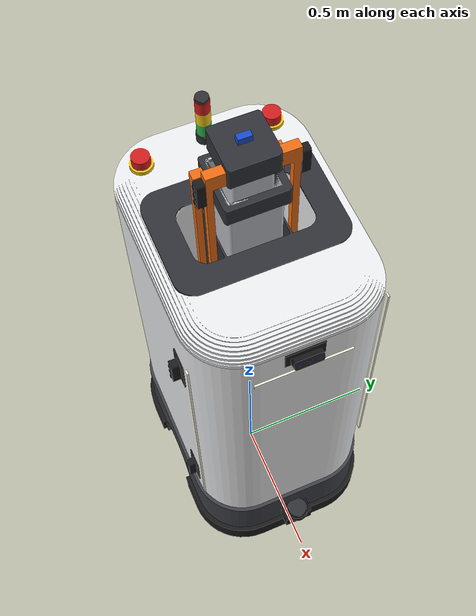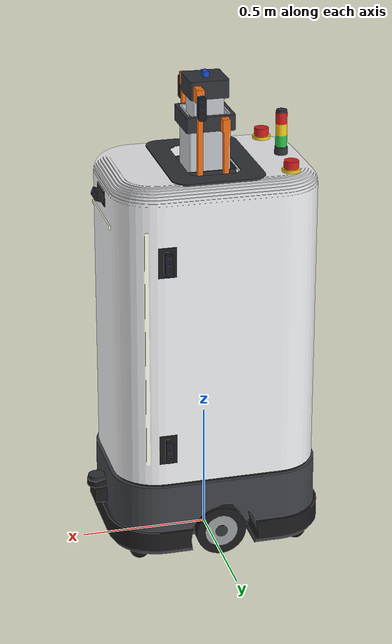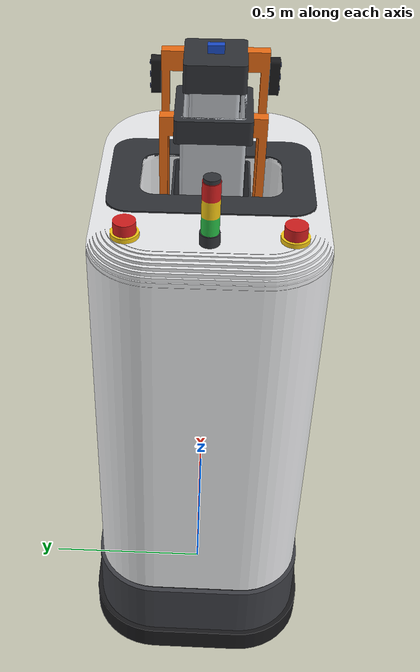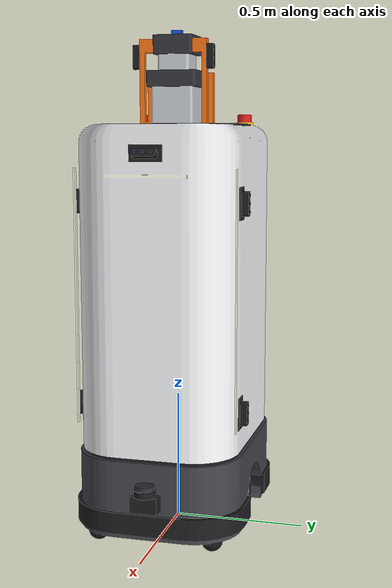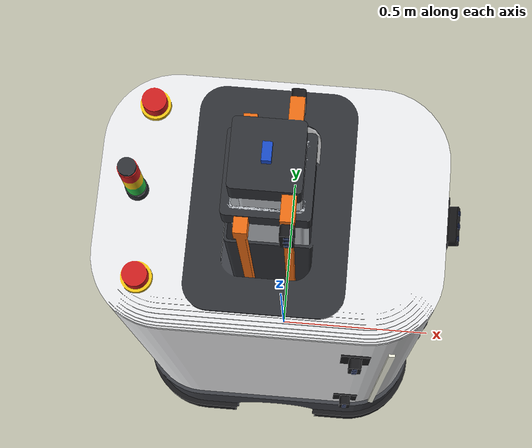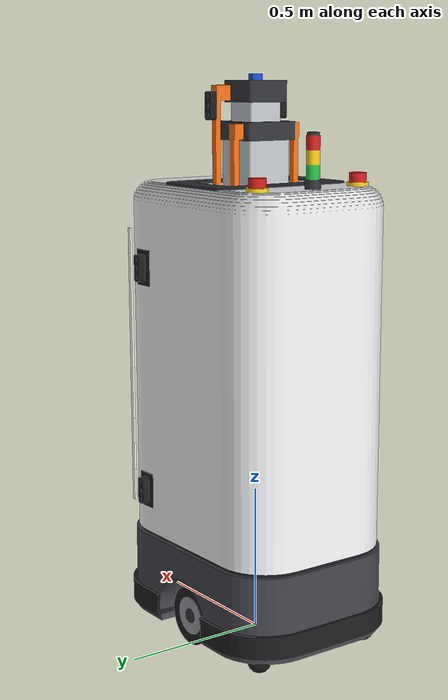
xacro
<?xml version="1.0"?>
<robot name="robot_inventaire" xmlns:xacro="http://www.ros.org/wiki/xacro">

  <!-- dimensions en metres, issues du dossier de conception -->
  <xacro:property name="corps_l" value="0.8"/>
  <xacro:property name="corps_w" value="0.6"/>
  <xacro:property name="corps_h" value="1.5"/>
  <xacro:property name="garde_sol" value="0.05"/>
  <xacro:property name="roue_r" value="0.1"/>
  <xacro:property name="roue_e" value="0.05"/>
  <xacro:property name="voie" value="0.5"/>
  <xacro:property name="folle_r" value="0.04"/>

  <!-- maillages 3d generes par outils/generer_maillages.py -->
  <xacro:property name="maillages" value="file://$(find robot_inventaire_description)/meshes"/>

  <!-- inerties des formes simples -->
  <xacro:macro name="inertie_boite" params="m x y z">
    <inertial>
      <mass value="${m}"/>
      <inertia ixx="${m*(y*y+z*z)/12}" ixy="0" ixz="0"
               iyy="${m*(x*x+z*z)/12}" iyz="0" izz="${m*(x*x+y*y)/12}"/>
    </inertial>
  </xacro:macro>

  <xacro:macro name="inertie_cylindre" params="m r h">
    <inertial>
      <mass value="${m}"/>
      <inertia ixx="${m*(3*r*r+h*h)/12}" ixy="0" ixz="0"
               iyy="${m*(3*r*r+h*h)/12}" iyz="0" izz="${m*r*r/2}"/>
    </inertial>
  </xacro:macro>

  <material name="noir"><color rgba="0.1 0.1 0.1 1"/></material>
  <material name="bleu"><color rgba="0.1 0.3 0.8 1"/></material>

  <!-- projection au sol, reference de la navigation -->
  <link name="base_footprint"/>

  <!-- corps : coque, socle, fourreau fixe du mat ; base_link est au bas du socle -->
  <link name="base_link">
    <visual>
      <geometry><mesh filename="${maillages}/corps.dae"/></geometry>
    </visual>
    <collision>
      <origin xyz="0 0 ${corps_h/2}"/>
      <geometry><box size="${corps_l} ${corps_w} ${corps_h}"/></geometry>
    </collision>
    <!-- batterie et lest en bas : centre de gravite bas -->
    <inertial>
      <origin xyz="0 0 0.3"/>
      <mass value="120"/>
      <inertia ixx="25" ixy="0" ixz="0" iyy="28" iyz="0" izz="10"/>
    </inertial>
  </link>

  <joint name="base_joint" type="fixed">
    <parent link="base_footprint"/>
    <child link="base_link"/>
    <origin xyz="0 0 ${garde_sol}"/>
  </joint>

  <!-- roues motrices -->
  <xacro:macro name="roue" params="nom y">
    <link name="roue_${nom}">
      <visual>
        <geometry><mesh filename="${maillages}/roue.dae"/></geometry>
      </visual>
      <collision>
        <origin rpy="${pi/2} 0 0"/>
        <geometry><cylinder radius="${roue_r}" length="${roue_e}"/></geometry>
      </collision>
      <xacro:inertie_cylindre m="3" r="${roue_r}" h="${roue_e}"/>
    </link>
    <joint name="roue_${nom}_joint" type="continuous">
      <parent link="base_link"/>
      <child link="roue_${nom}"/>
      <origin xyz="0 ${y} ${roue_r - garde_sol}"/>
      <axis xyz="0 1 0"/>
    </joint>
  </xacro:macro>

  <xacro:roue nom="gauche" y="${voie/2}"/>
  <xacro:roue nom="droite" y="${-voie/2}"/>

  <!-- roues folles aux quatre coins, cachees sous le socle -->
  <xacro:macro name="folle" params="nom x y">
    <link name="folle_${nom}">
      <visual>
        <geometry><sphere radius="${folle_r}"/></geometry>
        <material name="noir"/>
      </visual>
      <collision>
        <geometry><sphere radius="${folle_r}"/></geometry>
      </collision>
      <xacro:inertie_boite m="0.2" x="0.08" y="0.08" z="0.08"/>
    </link>
    <joint name="folle_${nom}_joint" type="fixed">
      <parent link="base_link"/>
      <child link="folle_${nom}"/>
      <origin xyz="${x} ${y} ${folle_r - garde_sol}"/>
    </joint>
  </xacro:macro>

  <xacro:folle nom="av_g" x="0.32" y="0.22"/>
  <xacro:folle nom="av_d" x="0.32" y="-0.22"/>
  <xacro:folle nom="ar_g" x="-0.32" y="0.22"/>
  <xacro:folle nom="ar_d" x="-0.32" y="-0.22"/>

  <xacro:macro name="segment" params="nom parent cote longueur origine_z course_max">
    <link name="${nom}">
      <visual>
        <geometry><mesh filename="${maillages}/${nom}.dae"/></geometry>
      </visual>
      <collision>
        <origin xyz="0 0 ${longueur/2}"/>
        <geometry><box size="${cote} ${cote} ${longueur}"/></geometry>
      </collision>
      <xacro:inertie_boite m="5" x="${cote}" y="${cote}" z="${longueur}"/>
    </link>
    <joint name="${nom}_joint" type="prismatic">
      <parent link="${parent}"/>
      <child link="${nom}"/>
      <origin xyz="0 0 ${origine_z}"/>
      <axis xyz="0 0 1"/>
      <limit lower="0" upper="${course_max}" effort="500" velocity="0.2"/>
    </joint>
  </xacro:macro>

  <xacro:segment nom="mat_1" parent="base_link" cote="0.16" longueur="1.55"
                 origine_z="0.15" course_max="1.10"/>
  <xacro:segment nom="mat_2" parent="mat_1" cote="0.12" longueur="1.47"
                 origine_z="0.20" course_max="1.10"/>

  <!-- ===== capteurs ===== -->

  <!-- camera gemini 335 : boitier + repere optique -->
  <xacro:macro name="camera" params="nom parent x y z yaw pitch:=0 roll:=0">
    <link name="${nom}">
      <visual>
        <geometry><mesh filename="${maillages}/camera.dae"/></geometry>
      </visual>
      <collision>
        <geometry><box size="0.025 0.09 0.03"/></geometry>
      </collision>
      <xacro:inertie_boite m="0.1" x="0.025" y="0.09" z="0.03"/>
    </link>
    <joint name="${nom}_joint" type="fixed">
      <parent link="${parent}"/>
      <child link="${nom}"/>
      <origin xyz="${x} ${y} ${z}" rpy="${roll} ${pitch} ${yaw}"/>
    </joint>

    <!-- convention des images : z devant, x a droite, y en bas -->
    <link name="${nom}_optique"/>
    <joint name="${nom}_optique_joint" type="fixed">
      <parent link="${nom}"/>
      <child link="${nom}_optique"/>
      <origin rpy="${-pi/2} 0 ${-pi/2}"/>
    </joint>
  </xacro:macro>

  <!-- cinq cameras par cote, en portrait (86 degres en vertical)
       hauteurs du sol, mat deploye : 0,50 / 1,27 / 2,17 / 3,15 / 4,00 m -->
  <xacro:macro name="colonne_cameras" params="cote signe">
    <!-- sur les flancs du corps -->
    <xacro:camera nom="cam_${cote}_1" parent="base_link"
                  x="0.22" y="${signe*0.3165}" z="0.45" yaw="${signe*pi/2}" roll="${pi/2}"/>
    <xacro:camera nom="cam_${cote}_2" parent="base_link"
                  x="0.22" y="${signe*0.3165}" z="1.22" yaw="${signe*pi/2}" roll="${pi/2}"/>
    <!-- rail du segment 1, en arriere -->
    <xacro:camera nom="cam_${cote}_3" parent="mat_1"
                  x="-0.05" y="${signe*0.1425}" z="0.87" yaw="${signe*pi/2}" roll="${pi/2}"/>
    <!-- rail du segment 2, en avant -->
    <xacro:camera nom="cam_${cote}_4" parent="mat_2"
                  x="0.05" y="${signe*0.1425}" z="0.55" yaw="${signe*pi/2}" roll="${pi/2}"/>
    <xacro:camera nom="cam_${cote}_5" parent="mat_2"
                  x="0.05" y="${signe*0.1425}" z="1.40" yaw="${signe*pi/2}" roll="${pi/2}"/>
  </xacro:macro>

  <xacro:colonne_cameras cote="g" signe="1"/>
  <xacro:colonne_cameras cote="d" signe="-1"/>

  <!-- camera avant, inclinee de 20 degres vers le haut : obstacles en hauteur -->
  <xacro:camera nom="cam_avant" parent="base_link"
                x="0.4165" y="0" z="1.40" yaw="0" pitch="${-20*pi/180}"/>

  <!-- lidar 2d sur son support avant, a 25 cm du sol -->
  <link name="lidar">
    <visual>
      <geometry><mesh filename="${maillages}/lidar.dae"/></geometry>
    </visual>
    <collision>
      <geometry><cylinder radius="0.04" length="0.04"/></geometry>
    </collision>
    <xacro:inertie_cylindre m="0.2" r="0.04" h="0.04"/>
  </link>
  <joint name="lidar_joint" type="fixed">
    <parent link="base_link"/>
    <child link="lidar"/>
    <origin xyz="${corps_l/2 + 0.04} 0 0.2"/>
  </joint>

  <!-- capteur de distance pose sur le chapeau du segment 2, oriente vers le haut -->
  <link name="tof_haut">
    <visual>
      <geometry><box size="0.02 0.04 0.02"/></geometry>
      <material name="bleu"/>
    </visual>
    <xacro:inertie_boite m="0.02" x="0.02" y="0.04" z="0.02"/>
  </link>
  <joint name="tof_haut_joint" type="fixed">
    <parent link="mat_2"/>
    <child link="tof_haut"/>
    <origin xyz="0 0 1.49" rpy="0 ${-pi/2} 0"/>
  </joint>

  <xacro:include filename="gazebo.xacro"/>

</robot>

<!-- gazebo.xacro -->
<robot xmlns:xacro="http://www.ros.org/wiki/xacro">

  <!-- roues motrices qui accrochent, roues folles qui glissent -->
  <gazebo reference="roue_gauche"><mu1>1.0</mu1><mu2>1.0</mu2></gazebo>
  <gazebo reference="roue_droite"><mu1>1.0</mu1><mu2>1.0</mu2></gazebo>
  <gazebo reference="folle_av_g"><mu1>0.0</mu1><mu2>0.0</mu2></gazebo>
  <gazebo reference="folle_av_d"><mu1>0.0</mu1><mu2>0.0</mu2></gazebo>
  <gazebo reference="folle_ar_g"><mu1>0.0</mu1><mu2>0.0</mu2></gazebo>
  <gazebo reference="folle_ar_d"><mu1>0.0</mu1><mu2>0.0</mu2></gazebo>

  <!-- entrainement differentiel : ecoute /cmd_vel, publie /odom -->
  <gazebo>
    <plugin name="diff_drive" filename="libgazebo_ros_diff_drive.so">
      <left_joint>roue_gauche_joint</left_joint>
      <right_joint>roue_droite_joint</right_joint>
      <wheel_separation>${voie}</wheel_separation>
      <wheel_diameter>${2*roue_r}</wheel_diameter>
      <max_wheel_torque>50</max_wheel_torque>
      <max_wheel_acceleration>1.0</max_wheel_acceleration>
      <publish_odom>true</publish_odom>
      <publish_odom_tf>true</publish_odom_tf>
      <publish_wheel_tf>true</publish_wheel_tf>
      <odometry_frame>odom</odometry_frame>
      <robot_base_frame>base_footprint</robot_base_frame>
    </plugin>
  </gazebo>

  <!-- rplidar s2 : 360 degres, 30 m, 10 hz -->
  <gazebo reference="lidar">
    <sensor name="lidar" type="ray">
      <always_on>true</always_on>
      <update_rate>10</update_rate>
      <visualize>false</visualize>
      <ray>
        <scan>
          <horizontal>
            <samples>720</samples>
            <resolution>1</resolution>
            <min_angle>-1.40</min_angle>
            <max_angle>1.40</max_angle>
          </horizontal>
        </scan>
        <range>
          <min>0.1</min>
          <max>30.0</max>
          <resolution>0.01</resolution>
        </range>
        <noise>
          <type>gaussian</type>
          <mean>0.0</mean>
          <stddev>0.01</stddev>
        </noise>
      </ray>
      <plugin name="lidar_plugin" filename="libgazebo_ros_ray_sensor.so">
        <ros><remapping>~/out:=scan</remapping></ros>
        <output_type>sensor_msgs/LaserScan</output_type>
        <frame_name>lidar</frame_name>
      </plugin>
    </sensor>
  </gazebo>

    <!-- mat commande par ros2_control -->
  <ros2_control name="GazeboSystem" type="system">
    <hardware>
      <plugin>gazebo_ros2_control/GazeboSystem</plugin>
    </hardware>
    <joint name="mat_1_joint">
      <command_interface name="position"/>
      <state_interface name="position"/>
    </joint>
    <joint name="mat_2_joint">
      <command_interface name="position"/>
      <state_interface name="position"/>
    </joint>
  </ros2_control>

  <gazebo>
    <plugin filename="libgazebo_ros2_control.so" name="gazebo_ros2_control">
      <parameters>$(find robot_inventaire_description)/config/controleurs.yaml</parameters>
    </plugin>
  </gazebo>

    <!-- cameras actives : aucune, test ou toutes -->
  <xacro:arg name="cameras" default="test"/>
  <xacro:property name="mode_cam" value="$(arg cameras)"/>

  <xacro:macro name="camera_gazebo" params="nom">
    <xacro:if value="${mode_cam == 'toutes' or (mode_cam == 'test' and nom in ['cam_g_1', 'cam_g_4'])}">
      <gazebo reference="${nom}">
        <sensor name="${nom}" type="camera">
          <always_on>true</always_on>
          <update_rate>2</update_rate>
          <visualize>false</visualize>
          <camera>
            <!-- gemini 335 : 86 degres, 1920 x 1080 -->
            <horizontal_fov>1.501</horizontal_fov>
            <image>
              <width>1920</width>
              <height>1080</height>
              <format>R8G8B8</format>
            </image>
            <clip><near>0.1</near><far>10.0</far></clip>
            <noise><type>gaussian</type><mean>0.0</mean><stddev>0.007</stddev></noise>
          </camera>
          <plugin name="${nom}_plugin" filename="libgazebo_ros_camera.so">
            <camera_name>${nom}</camera_name>
            <frame_name>${nom}_optique</frame_name>
          </plugin>
        </sensor>
      </gazebo>
    </xacro:if>
  </xacro:macro>

  <xacro:camera_gazebo nom="cam_g_1"/>
  <xacro:camera_gazebo nom="cam_g_2"/>
  <xacro:camera_gazebo nom="cam_g_3"/>
  <xacro:camera_gazebo nom="cam_g_4"/>
  <xacro:camera_gazebo nom="cam_g_5"/>
  <xacro:camera_gazebo nom="cam_d_1"/>
  <xacro:camera_gazebo nom="cam_d_2"/>
  <xacro:camera_gazebo nom="cam_d_3"/>
  <xacro:camera_gazebo nom="cam_d_4"/>
  <xacro:camera_gazebo nom="cam_d_5"/>
  <xacro:camera_gazebo nom="cam_avant"/>

</robot>
